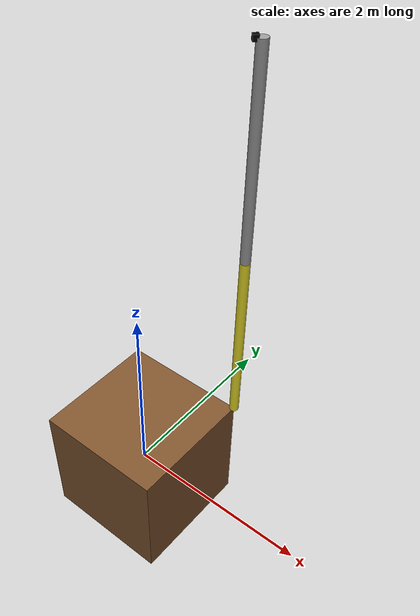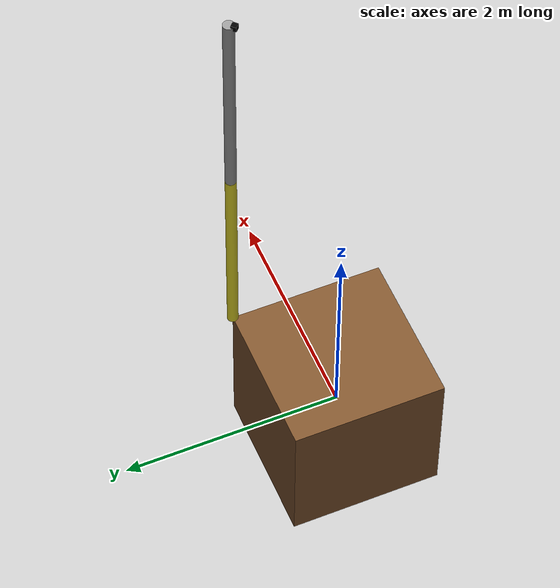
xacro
<?xml version="1.0"?>
<robot xmlns:xacro="http://www.ros.org/wiki/xacro" name="space_robot">
    <xacro:arg name="initial_positions_file" default="initial_positions.yaml" />

    <!-- Import space_robot urdf file -->
    <xacro:include filename="$(find space_robot)/description/urdf/space_robot.urdf.xacro" />

    <!-- Import control_xacro -->
    <xacro:include filename="space_robot.ros2_control.xacro" />

    <xacro:space_robot_ros2_control name="FakeSystem" initial_positions_file="$(arg initial_positions_file)"/>

</robot>

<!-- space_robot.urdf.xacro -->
<robot name="space_robot" xmlns:xacro="http://www.ros.org/wiki/xacro">
    <xacro:arg name="prefix" default="" />
    <xacro:arg name="use_gazebo" default="true" />

    <link name="world"/>

    <xacro:include filename="$(find space_robot)/description/urdf/robot_description.urdf.xacro"/>
    <xacro:srobot parent="world" prefix="{arg prefix}">
        <origin xyz="0 0 0" rpy="0 0 0"/>
    </xacro:srobot>

    <xacro:include filename="$(find space_robot)/description/urdf/robot_model/robot.materials.xacro"/>

    <xacro:if value="$(arg use_gazebo)">
        <!-- Import Gazebo Classic definitions + plugin -->
        <xacro:include filename="$(find space_robot)/description/gazebo/robot.gazebo.xacro" />
        <xacro:srobot_gazebo prefix="$(arg prefix)"/>
    </xacro:if>

</robot>

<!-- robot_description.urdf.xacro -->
<robot xmlns:xacro="http://www.ros.org/wiki/xacro">

    <xacro:macro name="srobot" params="parent prefix *origin">

        <xacro:property name="axel_offset" value="0.005"/>

        <!-- robot base -->
        <xacro:property name="base_size" value="1.4" />  <!-- Unit: m -->
        <xacro:property name="base_mass" value="300" />   <!-- Unit: kg -->
        <xacro:property name="base_inertia" value="50" />    <!-- Unit: kg*m^2 -->
        <xacro:property name="base_material" value="brown"/>
        <xacro:include filename="$(find space_robot)/description/urdf/robot_model/robot_base.urdf.xacro"/>
        <xacro:base
            name="base"
            cubic_size="${base_size}"
            base_mass="${base_mass}"
            base_inertia="${base_inertia}"
            material="${base_material}"
            parent_link="${parent}"
        >
            <xacro:insert_block name="origin"/>
        </xacro:base>

        <!-- robot link 1 -->
        <xacro:property name="link_1_length" value="1.94"/>
        <xacro:property name="link_1_radius" value="0.05"/>
        <xacro:property name="link_1_mass" value="25"/>
        <xacro:property name="link_1_inertia" value="7.8408"/>
        <xacro:property name="link_1_material" value="yellow"/>
        <xacro:include filename="$(find space_robot)/description/urdf/robot_model/robot_link.urdf.xacro"/>
        <xacro:link
            name="link_1"
            length="${link_1_length}"
            radius="${link_1_radius}"
            axel_offset="${axel_offset}"
            mass="${link_1_mass}"
            inertia="${link_1_inertia}"
            material="${link_1_material}"
            parent_link="base_link"
        >
            <origin xyz="${0.5 * base_size} ${0.5 * base_size} ${0.5 * (base_size + axel_offset)}"
                rpy="0 ${-0.5 * pi} ${0.75 * pi}"/>
        </xacro:link>

        <!-- robot link 2 -->
        <xacro:property name="link_2_length" value="1.94"/>
        <xacro:property name="link_2_radius" value="0.05"/>
        <xacro:property name="link_2_mass" value="25"/>
        <xacro:property name="link_2_inertia" value="7.8408"/>
        <xacro:property name="link_2_material" value="grey"/>
        <xacro:include filename="$(find space_robot)/description/urdf/robot_model/robot_link.urdf.xacro"/>
        <xacro:link
            name="link_2"
            length="${link_2_length}"
            radius="${link_2_radius}"
            axel_offset="${axel_offset}"
            mass="${link_2_mass}"
            inertia="${link_2_inertia}"
            material="${link_2_material}"
            parent_link="link_1"
        >
            <origin xyz="${0.5 * axel_offset + link_1_length} 0 0" rpy="0 0 0"/>
        </xacro:link>

        <xacro:include filename="$(find space_robot)/description/urdf/depth_camera.urdf.xacro"/>
        <xacro:depth_camera parent_link="link_2" camera_name="front_depth_cam">
            <origin xyz="${link_2_length} ${link_2_radius + 0.001} 0" rpy="0 0 0"/>
        </xacro:depth_camera>

        <xacro:include filename="$(find space_robot)/description/gazebo/depth_camera.gazebo.xacro"/>
        <xacro:depth_camera_gazebo camera_name="front_depth_cam"/>

    </xacro:macro>

</robot>

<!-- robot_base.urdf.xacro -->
<robot xmlns:xacro="http://www.ros.org/wiki/xacro" name="robot_base">

    <xacro:macro name="base" params="name cubic_size base_mass base_inertia material parent_link *origin">

        <joint name="base_joint" type="floating">
            <parent link="${parent_link}"/>
            <child link="${name}_link"/>
            <xacro:insert_block name="origin"/>
        </joint>

        <link name="${name}_link">
            <visual>
                <geometry>
                    <box size="${cubic_size} ${cubic_size} ${cubic_size}"/>
                </geometry>
                <material name="${material}"/>
                <origin xyz="0 0 0" rpy="0 0 0"/>
            </visual>
            <collision>
                <geometry>
                    <box size="${cubic_size + 0.001} ${cubic_size + 0.001} ${cubic_size + 0.001}"/>
                </geometry>
                <origin xyz="0 0 0" rpy="0 0 0"/>
            </collision>
            <inertial>
                <mass value="${base_mass}" />
                <origin xyz="0 0 0" rpy="0 0 0" />
                <inertia
                    ixx="${base_inertia}" ixy="0" ixz="0"
                    iyy="${base_inertia}" iyz="0"
                    izz="${base_inertia}"
                />
            </inertial>
        </link>

    </xacro:macro>

</robot>

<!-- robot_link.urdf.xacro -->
<robot xmlns:xacro="http://www.ros.org/wiki/xacro" name="robot_link">

    <xacro:macro name="link" params="name length radius axel_offset mass inertia material parent_link *origin">

        <joint name="${name}_joint" type="revolute">
            <parent link="${parent_link}"/>
            <child link="${name}"/>
            <xacro:insert_block name="origin"/>
            <axis xyz="0 0 1"/>
            <limit
                lower="-3.14"
                upper="3.14"
                velocity="1.0"
                effort="1000.0"
            />
        </joint>

        <link name="${name}">
            <visual>
                <geometry>
                    <cylinder length="${length}" radius="${radius}"/>
                </geometry>
                <material name="${material}"/>
                <origin xyz="${0.5 * (length + axel_offset)} 0 0" rpy="0 ${0.5 * pi} 0"/>
            </visual>
            <collision>
                <geometry>
                    <cylinder length="${length}" radius="${radius + 0.001}"/>
                </geometry>
                <origin xyz="${0.5 * (length + axel_offset)} 0 0" rpy="0 ${0.5 * pi} 0"/>
            </collision>
            <inertial>
                <mass value="${mass}" />
                <origin xyz="${0.5 * (length + axel_offset)} 0 0" rpy="0 ${0.5 * pi} 0"/>
                <inertia
                    ixx="${inertia}" ixy="0" ixz="0"
                    iyy="${inertia}" iyz="0"
                    izz="${inertia}"
                />
            </inertial>
        </link>

    </xacro:macro>

</robot>

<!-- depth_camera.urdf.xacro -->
<robot xmlns:xacro="http://www.ros.org/wiki/xacro">

    <xacro:macro name="depth_camera" params="parent_link camera_name *origin">

        <joint name="${camera_name}_joint" type="fixed">
            <parent link="${parent_link}"/>
            <child link="${camera_name}_link"/>
            <xacro:insert_block name="origin"/>
        </joint>

        <link name="${camera_name}_link">
            <visual>
                <geometry>
                    <box size="0.05 0.05 0.05"/>
                </geometry>
                <material name="black">
                    <color rgba="0.0 0.0 0.0 1.0"/>
                </material>
            </visual>
            <collision>
                <geometry>
                    <box size="0.05 0.05 0.05"/>
                </geometry>
            </collision>
            <inertial>
                <mass value="0.01" />
                <inertia ixx="0.001" ixy="0.0" ixz="0.0" iyy="0.001" iyz="0.0" izz="0.001" />
            </inertial>
        </link>

        <link name="${camera_name}_optical_frame"/>

        <joint name="${camera_name}_optical_joint" type="fixed">
            <parent link="${camera_name}_link"/>
            <child link="${camera_name}_optical_frame"/>
            <origin xyz="0 0 0" rpy="${0.5 * pi} 0 ${0.5 * pi}"/>
        </joint>

    </xacro:macro>

</robot>
